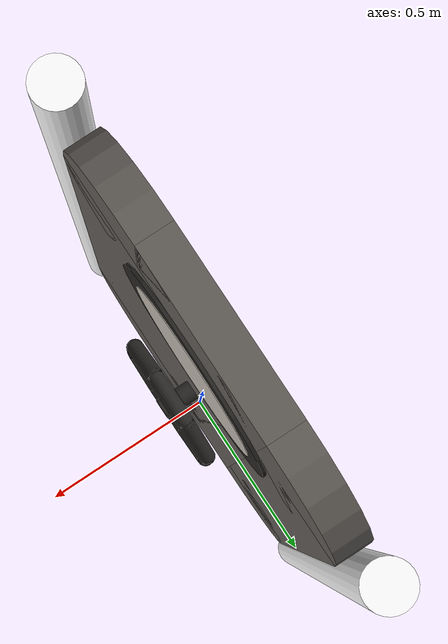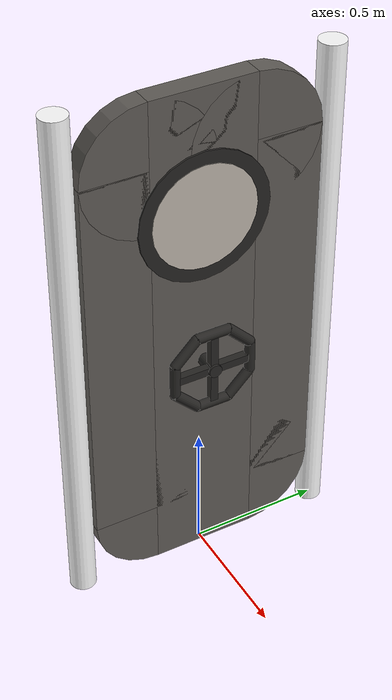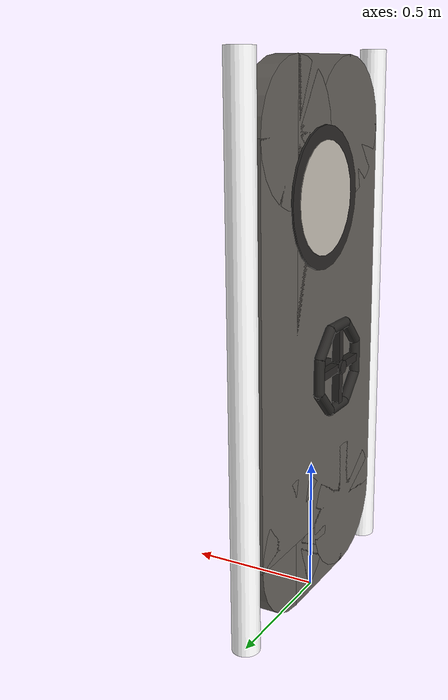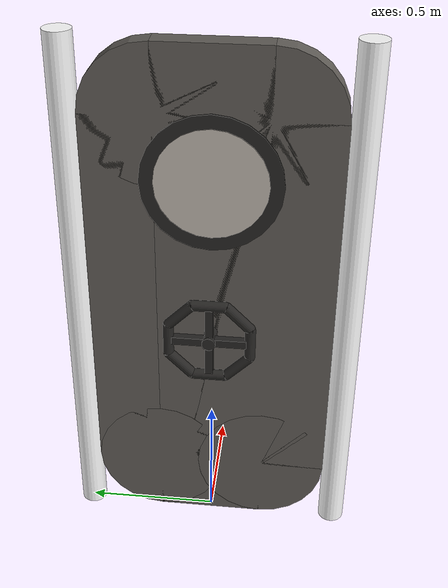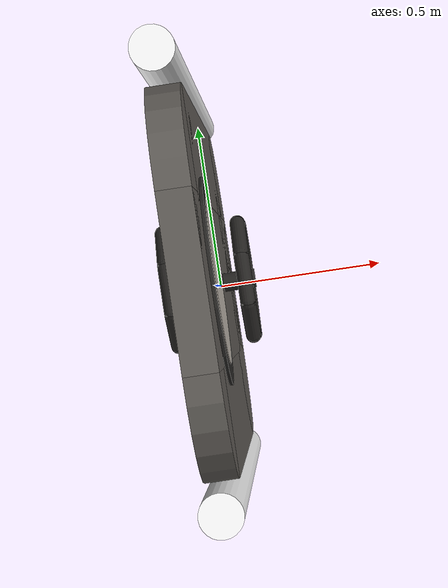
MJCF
<?xml version="1.0" encoding="utf-8"?>
<!-- from https://github.com/vikashplus/mj_envs/tree/master/mj_envs/hand_manipulation_suite/assets -->
<!-- Information about door can be found in this paper: https://arxiv.org/pdf/1709.10087.pdf -->

<mujoco model="door_lock">
  <asset>
    <texture file="../textures/steel-brushed.png" type="cube" name="metal" />
    <texture file="../textures/navy.png" type="cube" name="glass" />
    <material name="MatBright" texture="metal" specular="1" shininess="0.3" rgba="0.5 0.5 0.5 1" />
    <material name="MatDark" texture="metal" specular="0.2" shininess="0.3" rgba="0.2 0.2 0.2 1" />
    <material name="MatGlass" texture="glass" specular="1" shininess="0.3" rgba="1.0 1.0 1.0 1" />
  </asset>
    <worldbody>
      <body>
        <body name="object">
          <body pos="0 0 1.0">
            <body name="frame" pos="0 0 0" quat="0.707107 0 0 -0.707107">
              <geom name="r_frame"
                size="0.05 1.0" pos="0.5 0 0" type="cylinder" rgba="1 1 1 1"
                contype="0" conaffinity="0"  group="1"
                />
              <geom name="l_frame"
                size="0.05 1.0" pos="-0.5 0 0" type="cylinder" rgba="1 1 1 1"
                contype="0" conaffinity="0"  group="1"
                />
              <body name="door" pos="0 0 0">
                <inertial pos="0 0 0" mass="1.47392" diaginertia="0.472637 0.580381 0.109316"/>
                <!-- Density 20 kg/m^3 -->
                <joint name="hinge" pos="0.5 0 0" axis="0 0 1" range="0.0 3.0" limited="true"
                  damping="1" frictionloss="1"
                  />

                <geom fromto="0 -0.048 0.5 0 0.048 0.5" size="0.25" type="cylinder" material="MatDark"
                  contype="0" conaffinity="0"  group="1"
                  />
                <geom fromto="0 -0.05 0.5 0 0.05 0.5" size="0.2" type="cylinder" material="MatGlass"
                  contype="0" conaffinity="0"  group="1"
                  />
                <geom size="0.45 0.04 0.73" type="box" friction="1 1 1" group="0" material="MatBright"/>
                <geom size="0.20 0.04 0.98" type="box" friction="1 1 1" group="0" material="MatBright"/>
                <geom fromto=" 0.2 -0.04  0.73  0.2  0.04  0.73" size="0.25" type="cylinder" friction="1 1 1" group="0" material="MatBright"/>
                <geom fromto=" 0.2 -0.04 -0.73  0.2  0.04 -0.73" size="0.25" type="cylinder" friction="1 1 1" group="0" material="MatBright"/>
                <geom fromto="-0.2 -0.04  0.73 -0.2  0.04  0.73" size="0.25" type="cylinder" friction="1 1 1" group="0" material="MatBright"/>
                <geom fromto="-0.2 -0.04 -0.73 -0.2  0.04 -0.73" size="0.25" type="cylinder" friction="1 1 1" group="0" material="MatBright"/>

                <body name="handle" pos="0 0 -0.1">
                  <inertial pos="-0.017762 0 0" quat="0.365653 0.605347 -0.36522 0.605365" mass="0.1" diaginertia="0.0483771 0.0410001 0.0111013" />
                  <joint name="handle_joint" pos="0 0 0" axis="0 1 0" range="-1.57 1.57" frictionloss="0.1" damping="0" limited="true" springref="0" stiffness="1" />
                  <geom fromto="0 0.125 0 0 -0.125 0" size="0.025" type="cylinder" group="0" material="MatDark"/>

                  <body name="back_handle" pos="0 0.1 0">
                    <geom size="0.15 0.015 0.015" pos="0 0 0" type="box" group="0" material="MatDark"/>
                    <geom size="0.015 0.015 0.15" pos="0 0 0" type="box" group="0" material="MatDark"/>
                    <geom pos=" 0.15 0 0"
                      size="0.02 0.06" type="capsule"
                      friction="1 1 1" group="0"
                      material="MatDark"
                      />
                    <geom pos="-0.15 0 0"
                      size="0.02 0.06" type="capsule"
                      friction="1 1 1" group="0"
                      material="MatDark"
                      />
                    <geom pos="0 0  0.15" quat="0 0.707107 0 0.707107"
                      size="0.02 0.06" type="capsule"
                      friction="1 1 1" group="0"
                      material="MatDark"
                      />
                    <geom pos="0 0 -0.15" quat="0 0.707107 0 0.707107"
                      size="0.02 0.06" type="capsule"
                      friction="1 1 1" group="0"
                      material="MatDark"
                      />
                    <geom pos=" 0.10607 0  0.10607" quat="0 0.923880 0 0.382683"
                      size="0.02 0.06" type="capsule"
                      friction="1 1 1" group="0"
                      material="MatDark"
                      />
                    <geom pos="-0.10607 0 -0.10607" quat="0 0.923880 0 0.382683"
                      size="0.02 0.06" type="capsule"
                      friction="1 1 1" group="0"
                      material="MatDark"
                      />
                    <geom pos="-0.10607 0  0.10607" quat="0 0.382683 0 0.923880"
                      size="0.02 0.06" type="capsule"
                      friction="1 1 1" group="0"
                      material="MatDark"
                      />
                    <geom pos=" 0.10607 0 -0.10607" quat="0 0.382683 0 0.923880"
                      size="0.02 0.06" type="capsule"
                      friction="1 1 1" group="0"
                      material="MatDark"
                      />
                  </body>

                  <body name="front_handle" pos="0 -0.1 0">
                    <geom size="0.15 0.015 0.015" pos="0 0 0" type="box" group="0" material="MatDark"/>
                    <geom size="0.015 0.015 0.15" pos="0 0 0" type="box" group="0" material="MatDark"/>
                    <geom pos=" 0.15 0 0"
                      size="0.02 0.06" type="capsule"
                      friction="1 1 1" group="0"
                      material="MatDark"
                      />
                    <geom pos="-0.15 0 0"
                      size="0.02 0.06"
                      type="capsule"
                      friction="1 1 1" group="0" material="MatDark"
                      />
                    <geom pos="0 0  0.15" quat="0 0.707107 0 0.707107"
                      size="0.02 0.06"
                      type="capsule"
                      friction="1 1 1" group="0"
                      material="MatDark"
                      />
                    <geom pos="0 0 -0.15" quat="0 0.707107 0 0.707107"
                      size="0.02 0.06" type="capsule"
                      friction="1 1 1" group="0"
                      material="MatDark"
                      />
                    <geom pos=" 0.10607 0  0.10607" quat="0 0.923880 0 0.382683"
                      size="0.02 0.06" type="capsule"
                      friction="1 1 1" group="0"
                      material="MatDark"
                      />
                    <geom pos="-0.10607 0 -0.10607" quat="0 0.923880 0 0.382683"
                      size="0.02 0.06" type="capsule"
                      friction="1 1 1" group="0"
                      material="MatDark"
                      />
                    <geom pos="-0.10607 0  0.10607" quat="0 0.382683 0 0.923880"
                      size="0.02 0.06" type="capsule"
                      friction="1 1 1" group="0"
                      material="MatDark"
                      />
                    <geom pos=" 0.10607 0 -0.10607" quat="0 0.382683 0 0.923880"
                      size="0.02 0.06" type="capsule"
                      friction="1 1 1" group="0"
                      material="MatDark"
                      />

                  </body>

                  <!-- Don't render the door handle site by default -->
                  <site name="handle" pos="0.125 -0.10 0" size="0.02" rgba="0 0 1 0" />
                </body>
              </body>
            </body>
          </body>
        </body>
        <site name="bottom_site" pos="0 0 -0.6" rgba="0 0 0 0" size="0.005"/>
        <site name="top_site" pos="0 0 0.6" rgba="0 0 0 0" size="0.005"/>
        <site name="horizontal_radius_site" pos="0.3 0 0" rgba="0 0 0 0" size="0.1"/>
      </body>
    </worldbody>
</mujoco>
